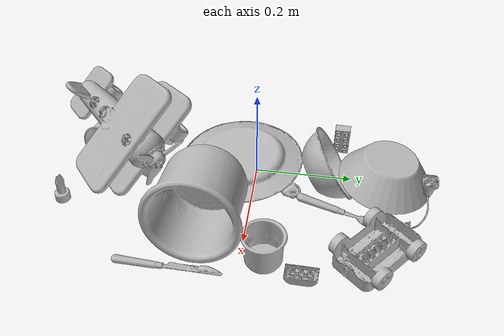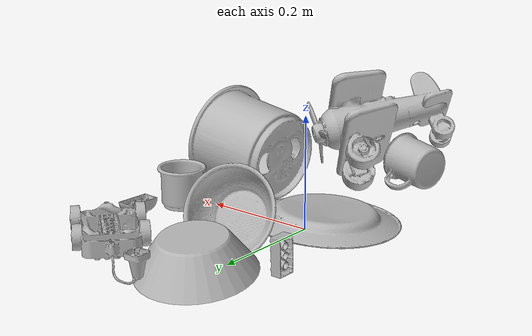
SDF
<sdf version="1.4">
  <world name="default">
    <light name="light1" type="point">
      <pose>0 0 1 0 0 0</pose>
      <diffuse>3 3 3 1</diffuse>
      <specular>3 3 3 1</specular>
    </light>
    <light name="light2" type="point">
      <pose>0 0.5 2 0 0 0</pose>
      <diffuse>1 1 1 1</diffuse>
      <specular>1 1 1 1</specular>
    </light>
    <light name="light3" type="point">
      <pose>0 0.5 2 0 0 0</pose>
      <diffuse>3 3 3 1</diffuse>
      <specular>3 3 3 1</specular>
    </light>
    <scene>
      <ambient>0.7 0.7 0.7</ambient>
    </scene>
    <model name="plate1">
      <link name="link_plate1">
        <collision name="default">
          <geometry>
            <mesh>
              <uri>model://plate/collision_meshes/collision.obj</uri>
              <scale>1.0 1.0 1.0</scale>
            </mesh>
          </geometry>
          <surface>
            <friction>
              <ode>
                <mu>0.5</mu>
                <mu2>0.5</mu2>
              </ode>
            </friction>
          <contact>
        <ode>
            <max_vel>0</max_vel>
            <min_depth>0.0001</min_depth>
            <kp>1e8</kp>
        </ode>
    </contact></surface>
        </collision>
        <visual name="default">
          <geometry>
            <mesh>
              <uri>model://plate/visual_meshes/visual.dae</uri>
              <scale>1.0 1.0 1.0</scale>
            </mesh>
          </geometry>
        </visual>
        <inertial>
          <mass>0.22833794355392456</mass>
          <pose>-0.000604461005423218 0.00027825840516015887 -0.0010561991948634386 0.0022188074693480237 -0.003225470002654536 0.4526028307495764</pose>
          <inertia>
            <ixx>0.0010681693</ixx>
            <iyy>0.0010579526</iyy>
            <izz>0.0020891798</izz>
            <ixy>0</ixy>
            <ixz>0</ixz>
            <iyz>0</iyz>
          </inertia>
        </inertial>
      </link>
      <pose>-0.01773945614695549 -0.03505370393395424 0.019885694608092308 3.0832127434675023 -0.027735199640899967 2.2803584845787523</pose>
    </model>
    <model name="cup1">
      <link name="link_cup1">
        <collision name="default">
          <geometry>
            <mesh>
              <uri>model://i_cups/collision_meshes/collision.obj</uri>
              <scale>2.0 2.0 2.0</scale>
            </mesh>
          </geometry>
          <surface>
            <friction>
              <ode>
                <mu>0.5</mu>
                <mu2>0.5</mu2>
              </ode>
            </friction>
          <contact>
        <ode>
            <max_vel>0</max_vel>
            <min_depth>0.0001</min_depth>
            <kp>1e8</kp>
        </ode>
    </contact></surface>
        </collision>
        <visual name="default">
          <geometry>
            <mesh>
              <uri>model://i_cups/visual_meshes/visual.dae</uri>
              <scale>2.0 2.0 2.0</scale>
            </mesh>
          </geometry>
        </visual>
        <inertial>
          <mass>0.4681873917579651</mass>
          <pose>0.00022480281768366694 0.00033594679553061724 -0.001715805265121162 -0.028982833374769763 -0.039873302367341296 -0.3459182567321849</pose>
          <inertia>
            <ixx>0.0025928493</ixx>
            <iyy>0.0026156942</iyy>
            <izz>0.0028979292</izz>
            <ixy>0</ixy>
            <ixz>0</ixz>
            <iyz>0</iyz>
          </inertia>
        </inertial>
      </link>
      <pose>0.1835767924785614 -0.08668680489063263 0.08967210352420807 1.4404492102284476 0.4702766729049123 1.4511091330883286</pose>
    </model>
    <model name="silverware1">
      <link name="link_silverware1">
        <collision name="default">
          <geometry>
            <mesh>
              <uri>model://fork/collision_meshes/collision.obj</uri>
              <scale>1.0 1.0 1.0</scale>
            </mesh>
          </geometry>
          <surface>
            <friction>
              <ode>
                <mu>0.5</mu>
                <mu2>0.5</mu2>
              </ode>
            </friction>
          <contact>
        <ode>
            <max_vel>0</max_vel>
            <min_depth>0.0001</min_depth>
            <kp>1e8</kp>
        </ode>
    </contact></surface>
        </collision>
        <visual name="default">
          <geometry>
            <mesh>
              <uri>model://fork/visual_meshes/visual.dae</uri>
              <scale>1.0 1.0 1.0</scale>
            </mesh>
          </geometry>
        </visual>
        <inertial>
          <mass>0.027571624144911766</mass>
          <pose>-0.02957003377377987 0.00046588233090005815 0.00032188609475269914 -0.013550958023284024 -0.010977835737993834 0.014453901364285019</pose>
          <inertia>
            <ixx>9.665413e-07</ixx>
            <iyy>7.198156e-05</iyy>
            <izz>7.24139e-05</izz>
            <ixy>0</ixy>
            <ixz>0</ixz>
            <iyz>0</iyz>
          </inertia>
        </inertial>
      </link>
      <pose>0.10691022127866745 0.1893012821674347 0.011070650070905685 0.046524437372031116 0.14094502782616372 1.359980786328828</pose>
    </model>
    <model name="silverware2">
      <link name="link_silverware2">
        <collision name="default">
          <geometry>
            <mesh>
              <uri>model://spoon/collision_meshes/collision.obj</uri>
              <scale>1.0 1.0 1.0</scale>
            </mesh>
          </geometry>
          <surface>
            <friction>
              <ode>
                <mu>0.5</mu>
                <mu2>0.5</mu2>
              </ode>
            </friction>
          <contact>
        <ode>
            <max_vel>0</max_vel>
            <min_depth>0.0001</min_depth>
            <kp>1e8</kp>
        </ode>
    </contact></surface>
        </collision>
        <visual name="default">
          <geometry>
            <mesh>
              <uri>model://spoon/visual_meshes/visual.dae</uri>
              <scale>1.0 1.0 1.0</scale>
            </mesh>
          </geometry>
        </visual>
        <inertial>
          <mass>0.026229728013277054</mass>
          <pose>-0.005526318680495024 -0.001603417913429439 -0.0007271656068041921 0.03521671072465583 -0.039065837568760656 0.006150610113583586</pose>
          <inertia>
            <ixx>1.4589405e-06</ixx>
            <iyy>9.980327e-05</iyy>
            <izz>0.00010052276</izz>
            <ixy>0</ixy>
            <ixz>0</ixz>
            <iyz>0</iyz>
          </inertia>
        </inertial>
      </link>
      <pose>-0.005575553979724646 0.06107989698648453 0.00838969275355339 0.005160880685612667 0.026960384647207226 0.29979544029498056</pose>
    </model>
    <model name="silverware3">
      <link name="link_silverware3">
        <collision name="default">
          <geometry>
            <mesh>
              <uri>model://knife/collision_meshes/collision.obj</uri>
              <scale>1.0 1.0 1.0</scale>
            </mesh>
          </geometry>
          <surface>
            <friction>
              <ode>
                <mu>0.5</mu>
                <mu2>0.5</mu2>
              </ode>
            </friction>
          <contact>
        <ode>
            <max_vel>0</max_vel>
            <min_depth>0.0001</min_depth>
            <kp>1e8</kp>
        </ode>
    </contact></surface>
        </collision>
        <visual name="default">
          <geometry>
            <mesh>
              <uri>model://knife/visual_meshes/visual.dae</uri>
              <scale>1.0 1.0 1.0</scale>
            </mesh>
          </geometry>
        </visual>
        <inertial>
          <mass>0.02346421591937542</mass>
          <pose>-0.02378525584936142 0.0015275125624611974 5.062017953605391e-05 0.07305400797241687 0.017248417900584085 -0.007409820985288758</pose>
          <inertia>
            <ixx>6.6600956e-07</ixx>
            <iyy>9.0145724e-05</iyy>
            <izz>9.036023e-05</izz>
            <ixy>0</ixy>
            <ixz>0</ixz>
            <iyz>0</iyz>
          </inertia>
        </inertial>
      </link>
      <pose>0.283011794090271 -0.1340494006872177 0.005810764618217945 2.889377141252398 0.025915096401308166 1.5582041136724778</pose>
    </model>
    <model name="cup3">
      <link name="link_cup3">
        <collision name="default">
          <geometry>
            <mesh>
              <uri>model://g_cups/collision_meshes/collision.obj</uri>
              <scale>1.0 1.0 1.0</scale>
            </mesh>
          </geometry>
          <surface>
            <friction>
              <ode>
                <mu>0.5</mu>
                <mu2>0.5</mu2>
              </ode>
            </friction>
          <contact>
        <ode>
            <max_vel>0</max_vel>
            <min_depth>0.0001</min_depth>
            <kp>1e8</kp>
        </ode>
    </contact></surface>
        </collision>
        <visual name="default">
          <geometry>
            <mesh>
              <uri>model://g_cups/visual_meshes/visual.dae</uri>
              <scale>1.0 1.0 1.0</scale>
            </mesh>
          </geometry>
        </visual>
        <inertial>
          <mass>0.061065707355737686</mass>
          <pose>-0.0007946277037262917 -4.2064726585522294e-05 -0.002132938476279378 -0.21381528234109023 -0.31410608856426947 0.31118675593786127</pose>
          <inertia>
            <ixx>7.1277376e-05</ixx>
            <iyy>7.10349e-05</iyy>
            <izz>7.383109e-05</izz>
            <ixy>0</ixy>
            <ixz>0</ixz>
            <iyz>0</iyz>
          </inertia>
        </inertial>
      </link>
      <pose>0.2417108416557312 0.045025963336229324 0.03720300272107124 -7.582562013452035e-08 -7.726606122901899e-07 -3.07078521791618</pose>
    </model>
    <model name="cup4">
      <link name="link_cup4">
        <collision name="default">
          <geometry>
            <mesh>
              <uri>model://mug/collision_meshes/collision.obj</uri>
              <scale>1.0 1.0 1.0</scale>
            </mesh>
          </geometry>
          <surface>
            <friction>
              <ode>
                <mu>0.5</mu>
                <mu2>0.5</mu2>
              </ode>
            </friction>
          <contact>
        <ode>
            <max_vel>0</max_vel>
            <min_depth>0.0001</min_depth>
            <kp>1e8</kp>
        </ode>
    </contact></surface>
        </collision>
        <visual name="default">
          <geometry>
            <mesh>
              <uri>model://mug/visual_meshes/visual.dae</uri>
              <scale>1.0 1.0 1.0</scale>
            </mesh>
          </geometry>
        </visual>
        <inertial>
          <mass>0.23807048797607422</mass>
          <pose>0.009571674279868603 0.0008143257582560182 -0.010947330854833126 -0.1298314387661624 0.08737745525079747 0.05507303490292968</pose>
          <inertia>
            <ixx>0.00023648023</ixx>
            <iyy>0.0002641344</iyy>
            <izz>0.00030547503</izz>
            <ixy>0</ixy>
            <ixz>0</ixz>
            <iyz>0</iyz>
          </inertia>
        </inertial>
      </link>
      <pose>-0.016378041356801987 -0.3080320656299591 0.03765008598566055 -1.4684040995227907 -0.6031199506647499 -1.8735033855018237</pose>
    </model>
    <model name="cup5">
      <link name="link_cup5">
        <collision name="default">
          <geometry>
            <mesh>
              <uri>model://cup_small/collision_meshes/collision.obj</uri>
              <scale>1.0 1.0 1.0</scale>
            </mesh>
          </geometry>
          <surface>
            <friction>
              <ode>
                <mu>0.5</mu>
                <mu2>0.5</mu2>
              </ode>
            </friction>
          <contact>
        <ode>
            <max_vel>0</max_vel>
            <min_depth>0.0001</min_depth>
            <kp>1e8</kp>
        </ode>
    </contact></surface>
        </collision>
        <visual name="default">
          <geometry>
            <mesh>
              <uri>model://cup_small/visual_meshes/visual.dae</uri>
              <scale>1.0 1.0 1.0</scale>
            </mesh>
          </geometry>
        </visual>
        <inertial>
          <mass>0.034257128834724426</mass>
          <pose>0.00010482469951966777 -0.00033778377110138535 -0.01074282731860876 -0.011493012610900502 -0.015280351102743797 -0.5058271067899499</pose>
          <inertia>
            <ixx>2.0170073e-05</ixx>
            <iyy>2.0274121e-05</iyy>
            <izz>9.106847e-06</izz>
            <ixy>0</ixy>
            <ixz>0</ixz>
            <iyz>0</iyz>
          </inertia>
        </inertial>
      </link>
      <pose>-0.013265416026115417 0.2450638711452484 0.02030070312321186 1.4540282769454522 -0.8423674073245399 1.562169581939922</pose>
    </model>
    <model name="bowl1">
      <link name="link_bowl1">
        <collision name="default">
          <geometry>
            <mesh>
              <uri>model://bowl/collision_meshes/collision.obj</uri>
              <scale>1.0 1.0 1.0</scale>
            </mesh>
          </geometry>
          <surface>
            <friction>
              <ode>
                <mu>0.5</mu>
                <mu2>0.5</mu2>
              </ode>
            </friction>
          <contact>
        <ode>
            <max_vel>0</max_vel>
            <min_depth>0.0001</min_depth>
            <kp>1e8</kp>
        </ode>
    </contact></surface>
        </collision>
        <visual name="default">
          <geometry>
            <mesh>
              <uri>model://bowl/visual_meshes/visual.dae</uri>
              <scale>1.0 1.0 1.0</scale>
            </mesh>
          </geometry>
        </visual>
        <inertial>
          <mass>0.06465846300125122</mass>
          <pose>0.0002044529392151162 -0.0010302059818059206 -0.0008042643894441426 -0.015764115524798613 0.014546769889283702 0.7140385686011532</pose>
          <inertia>
            <ixx>0.00014852564</ixx>
            <iyy>0.000145207</iyy>
            <izz>0.00024987117</izz>
            <ixy>0</ixy>
            <ixz>0</ixz>
            <iyz>0</iyz>
          </inertia>
        </inertial>
      </link>
      <pose>0.03403092548251152 0.1417226493358612 0.05928732454776764 1.0706592211325343 -0.1906945270357698 -2.7903527819055114</pose>
    </model>
    <model name="bowl2">
      <link name="link_bowl2">
        <collision name="default">
          <geometry>
            <mesh>
              <uri>model://bowl_a/collision_meshes/collision.obj</uri>
              <scale>1.0 1.0 1.0</scale>
            </mesh>
          </geometry>
          <surface>
            <friction>
              <ode>
                <mu>0.5</mu>
                <mu2>0.5</mu2>
              </ode>
            </friction>
          <contact>
        <ode>
            <max_vel>0</max_vel>
            <min_depth>0.0001</min_depth>
            <kp>1e8</kp>
        </ode>
    </contact></surface>
        </collision>
        <visual name="default">
          <geometry>
            <mesh>
              <uri>model://bowl_a/visual_meshes/visual.dae</uri>
              <scale>1.0 1.0 1.0</scale>
            </mesh>
          </geometry>
        </visual>
        <inertial>
          <mass>0.4949932396411896</mass>
          <pose>0.00027867621975019574 4.730939326691441e-05 -0.0013765293406322598 -0.0009805412802391578 -0.001093824733375575 -0.19123603072484788</pose>
          <inertia>
            <ixx>0.0014092687</ixx>
            <iyy>0.0014179207</iyy>
            <izz>0.0025064375</izz>
            <ixy>0</ixy>
            <ixz>0</ixz>
            <iyz>0</iyz>
          </inertia>
        </inertial>
      </link>
      <pose>0.000956239178776741 0.2746110260486603 0.041735656559467316 3.014338774714262 -0.01801646964665819 0.02324455545558521</pose>
    </model>
    <model name="toy1">
      <link name="link_toy1">
        <collision name="default">
          <geometry>
            <mesh>
              <uri>model://a_toy_airplane/collision_meshes/collision.obj</uri>
              <scale>1.0 1.0 1.0</scale>
            </mesh>
          </geometry>
          <surface>
            <friction>
              <ode>
                <mu>0.5</mu>
                <mu2>0.5</mu2>
              </ode>
            </friction>
          <contact>
        <ode>
            <max_vel>0</max_vel>
            <min_depth>0.0001</min_depth>
            <kp>1e8</kp>
        </ode>
    </contact></surface>
        </collision>
        <visual name="default">
          <geometry>
            <mesh>
              <uri>model://a_toy_airplane/visual_meshes/visual.dae</uri>
              <scale>1.0 1.0 1.0</scale>
            </mesh>
          </geometry>
        </visual>
        <inertial>
          <mass>1.5726872682571411</mass>
          <pose>0.025165090337395668 -0.003707318101078272 -0.0011962441494688392 -0.012016975653996446 -0.14663502644886817 0.00414906395026872</pose>
          <inertia>
            <ixx>0.0057111816</ixx>
            <iyy>0.008322349</iyy>
            <izz>0.009744448</izz>
            <ixy>0</ixy>
            <ixz>0</ixz>
            <iyz>0</iyz>
          </inertia>
        </inertial>
      </link>
      <pose>0.03001149743795395 -0.2743673324584961 0.13092438876628876 0.8090864013583148 0.3159079716400874 1.0199555827249467</pose>
    </model>
    <model name="toy2">
      <link name="link_toy2">
        <collision name="default">
          <geometry>
            <mesh>
              <uri>model://g_lego_duplo/collision_meshes/collision.obj</uri>
              <scale>1.0 1.0 1.0</scale>
            </mesh>
          </geometry>
          <surface>
            <friction>
              <ode>
                <mu>0.5</mu>
                <mu2>0.5</mu2>
              </ode>
            </friction>
          <contact>
        <ode>
            <max_vel>0</max_vel>
            <min_depth>0.0001</min_depth>
            <kp>1e8</kp>
        </ode>
    </contact></surface>
        </collision>
        <visual name="default">
          <geometry>
            <mesh>
              <uri>model://g_lego_duplo/visual_meshes/visual.dae</uri>
              <scale>1.0 1.0 1.0</scale>
            </mesh>
          </geometry>
        </visual>
        <inertial>
          <mass>0.27239978313446045</mass>
          <pose>-0.05004768446087837 0.0017554647056385875 0.003880675882101059 0.010962999716487856 0.03810827607734427 -0.09653019061870628</pose>
          <inertia>
            <ixx>0.00039471043</ixx>
            <iyy>0.0011933373</iyy>
            <izz>0.0014929089</izz>
            <ixy>0</ixy>
            <ixz>0</ixz>
            <iyz>0</iyz>
          </inertia>
        </inertial>
      </link>
      <pose>0.1575084924697876 0.29290688037872314 0.027629848569631577 -3.1415531148017393 -0.030290739575804637 2.438579074260751</pose>
    </model>
    <model name="toy3">
      <link name="link_toy3">
        <collision name="default">
          <geometry>
            <mesh>
              <uri>model://e_toy_airplane/collision_meshes/collision.obj</uri>
              <scale>1.0 1.0 1.0</scale>
            </mesh>
          </geometry>
          <surface>
            <friction>
              <ode>
                <mu>0.5</mu>
                <mu2>0.5</mu2>
              </ode>
            </friction>
          <contact>
        <ode>
            <max_vel>0</max_vel>
            <min_depth>0.0001</min_depth>
            <kp>1e8</kp>
        </ode>
    </contact></surface>
        </collision>
        <visual name="default">
          <geometry>
            <mesh>
              <uri>model://e_toy_airplane/visual_meshes/visual.dae</uri>
              <scale>1.0 1.0 1.0</scale>
            </mesh>
          </geometry>
        </visual>
        <inertial>
          <mass>0.02767481654882431</mass>
          <pose>0.00011740472837118432 -2.2482989152194932e-05 -0.011187202297151089 0.005518508312800945 0.009228282632666047 0.1504154330375105</pose>
          <inertia>
            <ixx>8.446671e-06</ixx>
            <iyy>8.360266e-06</iyy>
            <izz>2.5385568e-06</izz>
            <ixy>0</ixy>
            <ixz>0</ixz>
            <iyz>0</iyz>
          </inertia>
        </inertial>
      </link>
      <pose>0.13826018571853638 -0.38430681824684143 0.03321205824613571 7.996356869980282e-05 1.8086243519663065e-06 0.9669787997281906</pose>
    </model>
    <model name="toy4">
      <link name="link_toy4">
        <collision name="default">
          <geometry>
            <mesh>
              <uri>model://c_lego_duplo/collision_meshes/collision.obj</uri>
              <scale>1.0 1.0 1.0</scale>
            </mesh>
          </geometry>
          <surface>
            <friction>
              <ode>
                <mu>0.5</mu>
                <mu2>0.5</mu2>
              </ode>
            </friction>
          <contact>
        <ode>
            <max_vel>0</max_vel>
            <min_depth>0.0001</min_depth>
            <kp>1e8</kp>
        </ode>
    </contact></surface>
        </collision>
        <visual name="default">
          <geometry>
            <mesh>
              <uri>model://c_lego_duplo/visual_meshes/visual.dae</uri>
              <scale>1.0 1.0 1.0</scale>
            </mesh>
          </geometry>
        </visual>
        <inertial>
          <mass>0.027596205472946167</mass>
          <pose>0.0003164597146678716 0.00019464619981590658 0.0010453155264258385 -0.011520800817134696 0.005900104067849837 0.03110033537421094</pose>
          <inertia>
            <ixx>1.0619538e-05</ixx>
            <iyy>3.3922634e-06</iyy>
            <izz>1.2410018e-05</izz>
            <ixy>0</ixy>
            <ixz>0</ixz>
            <iyz>0</iyz>
          </inertia>
        </inertial>
      </link>
      <pose>-0.08722645044326782 0.17481377720832825 0.032131534069776535 1.5893347697796278 0.03521696675234627 1.5553276693699638</pose>
    </model>
    <model name="toy5">
      <link name="link_toy5">
        <collision name="default">
          <geometry>
            <mesh>
              <uri>model://a_lego_duplo/collision_meshes/collision.obj</uri>
              <scale>1.0 1.0 1.0</scale>
            </mesh>
          </geometry>
          <surface>
            <friction>
              <ode>
                <mu>0.5</mu>
                <mu2>0.5</mu2>
              </ode>
            </friction>
          <contact>
        <ode>
            <max_vel>0</max_vel>
            <min_depth>0.0001</min_depth>
            <kp>1e8</kp>
        </ode>
    </contact></surface>
        </collision>
        <visual name="default">
          <geometry>
            <mesh>
              <uri>model://a_lego_duplo/visual_meshes/visual.dae</uri>
              <scale>1.0 1.0 1.0</scale>
            </mesh>
          </geometry>
        </visual>
        <inertial>
          <mass>0.011767913587391376</mass>
          <pose>-0.00011337622709106654 0.00018517576972953975 0.0003692608152050525 -0.0141170192796563 -0.00012565406274383194 6.140908251533293e-05</pose>
          <inertia>
            <ixx>1.5087408e-06</ixx>
            <iyy>3.3799095e-06</iyy>
            <izz>4.186769e-06</izz>
            <ixy>0</ixy>
            <ixz>0</ixz>
            <iyz>0</iyz>
          </inertia>
        </inertial>
      </link>
      <pose>0.27786868810653687 0.12038764357566833 0.0121247423812747 -3.141300857746697 -0.015587736505924495 1.5275990099591</pose>
    </model>
  <physics type="ode">
      <max_contacts>50</max_contacts>
      <ode>
        <solver>
          <type>quick</type>
          <iters>75</iters>
        </solver>
        <constraints>
          <contact_max_correcting_vel>0</contact_max_correcting_vel>
          <contact_surface_layer>0</contact_surface_layer>
        </constraints>
      </ode>
    </physics></world>
</sdf>
